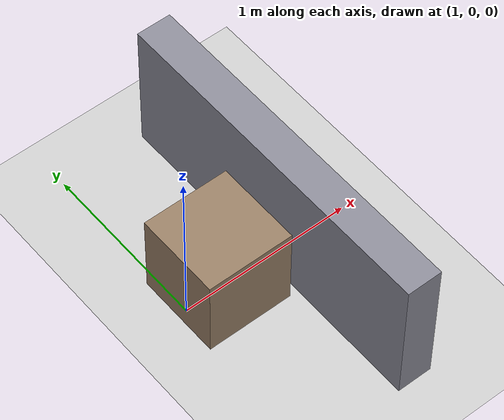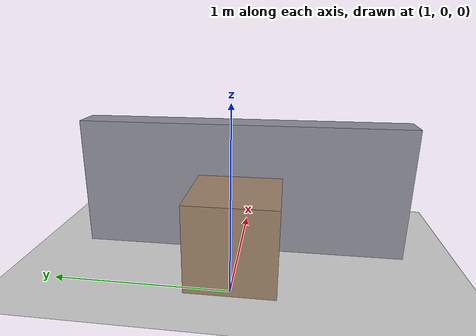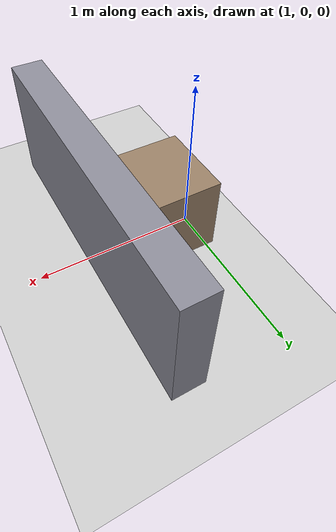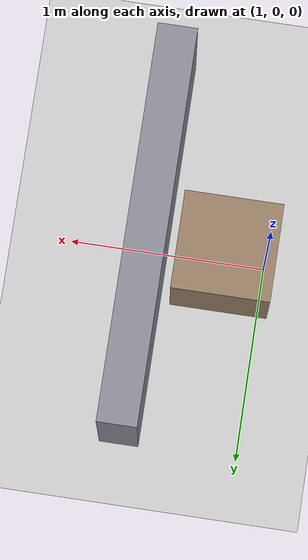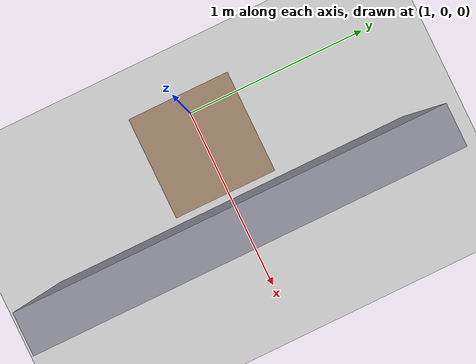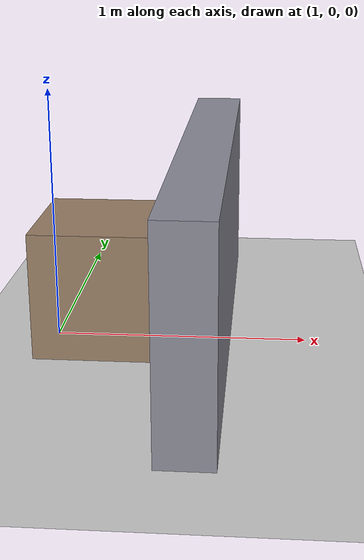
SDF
<?xml version="1.0"?>
<sdf version="1.9">
  <world name="mobile_manipulator_world">
    <physics name="default_physics" type="ode">
      <max_step_size>0.001</max_step_size>
      <real_time_factor>1.0</real_time_factor>
    </physics>

    <plugin filename="gz-sim-physics-system" name="gz::sim::systems::Physics"/>
    <plugin filename="gz-sim-user-commands-system" name="gz::sim::systems::UserCommands"/>
    <plugin filename="gz-sim-scene-broadcaster-system" name="gz::sim::systems::SceneBroadcaster"/>
    <plugin filename="gz-sim-sensors-system" name="gz::sim::systems::Sensors"/>
    <plugin filename="gz-sim-contact-system" name="gz::sim::systems::Contact"/>

    <light type="directional" name="sun">
      <cast_shadows>true</cast_shadows>
      <pose>0 0 10 0 0 0</pose>
      <diffuse>0.8 0.8 0.8 1</diffuse>
      <specular>0.2 0.2 0.2 1</specular>
      <direction>-0.5 0.1 -0.9</direction>
    </light>

    <model name="ground_plane">
      <static>true</static>
      <link name="link">
        <collision name="collision">
          <geometry><plane><normal>0 0 1</normal><size>100 100</size></plane></geometry>
        </collision>
        <visual name="visual">
          <geometry><plane><normal>0 0 1</normal><size>100 100</size></plane></geometry>
          <material>
            <ambient>0.8 0.8 0.8 1</ambient>
            <diffuse>0.8 0.8 0.8 1</diffuse>
          </material>
        </visual>
      </link>
    </model>

    <!-- A pick-and-place target table for Scenario C (mobile manipulation). -->
    <model name="pick_table">
      <static>true</static>
      <pose>1.2 0 0.25 0 0 0</pose>
      <link name="link">
        <collision name="collision">
          <geometry><box><size>0.5 0.5 0.5</size></box></geometry>
        </collision>
        <visual name="visual">
          <geometry><box><size>0.5 0.5 0.5</size></box></geometry>
          <material>
            <ambient>0.6 0.5 0.4 1</ambient>
            <diffuse>0.6 0.5 0.4 1</diffuse>
          </material>
        </visual>
      </link>
    </model>

    <model name="obstacle_wall">
      <static>true</static>
      <pose>1.6 0 0.4 0 0 0</pose>
      <link name="link">
        <collision name="collision">
          <geometry><box><size>0.2 2.0 0.8</size></box></geometry>
        </collision>
        <visual name="visual">
          <geometry><box><size>0.2 2.0 0.8</size></box></geometry>
          <material>
            <ambient>0.55 0.55 0.6 1</ambient>
            <diffuse>0.55 0.55 0.6 1</diffuse>
          </material>
        </visual>
      </link>
    </model>
  </world>
</sdf>
